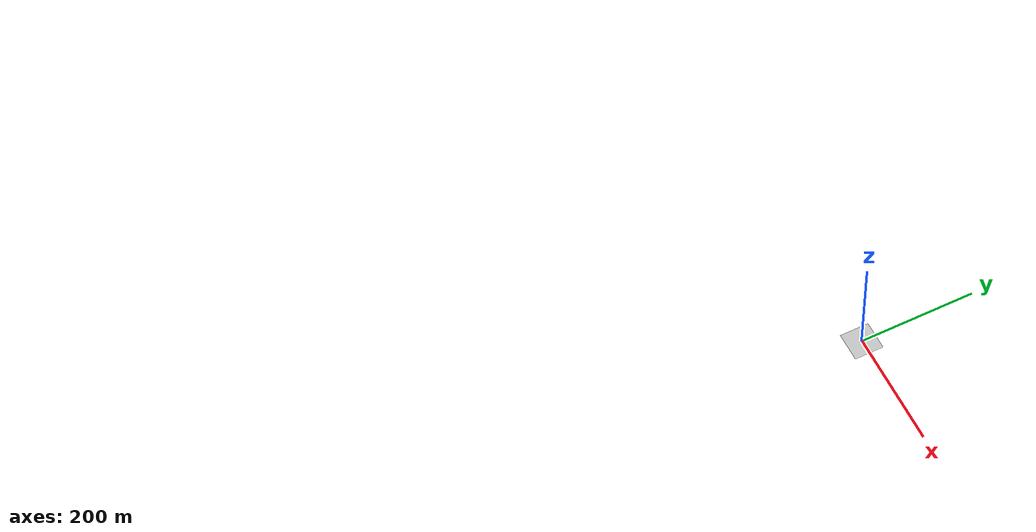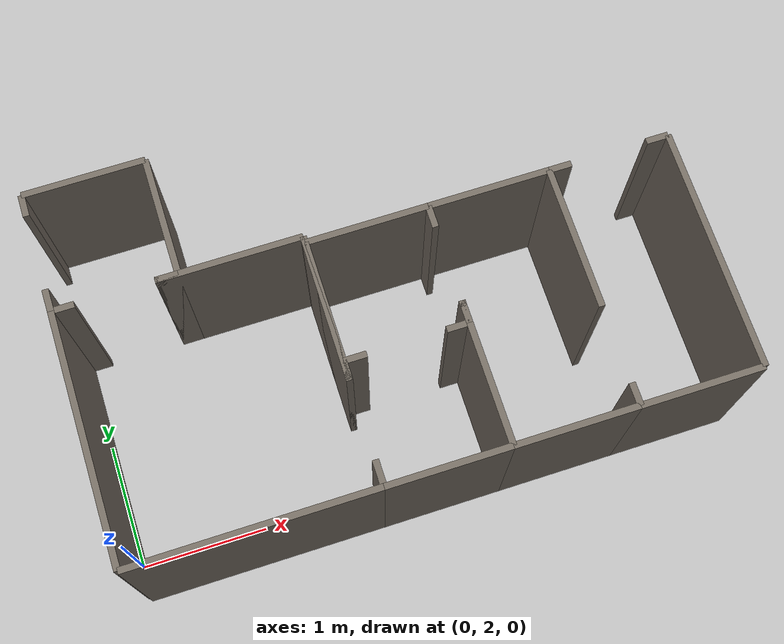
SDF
<sdf version="1.10">
 <world name="fase4">
  <plugin filename="gz-sim-physics-system" name="gz::sim::systems::Physics"/>
  <plugin filename="gz-sim-user-commands-system" name="gz::sim::systems::UserCommands"/>
  <plugin filename="gz-sim-scene-broadcaster-system" name="gz::sim::systems::SceneBroadcaster"/>
  <plugin filename="gz-sim-sensors-system" name="gz::sim::systems::Sensors">
   <render_engine>ogre2</render_engine>
  </plugin>
  <plugin filename="gz-sim-imu-system" name="gz::sim::systems::Imu"/>
  <plugin filename="gz-sim-air-speed-system" name="gz::sim::systems::AirSpeed"/>
  <plugin name="gz::sim::systems::AirPressure" filename="gz-sim-air-pressure-system"/>
  <light type="directional" name="sun">
   <pose>0 0 20 0 0 0</pose>
   <ambient>0.8 0.8 0.8 1</ambient>
   <diffuse>1.0 1.0 1.0 1</diffuse>
   <specular>0.2 0.2 0.2 1</specular>
   <attenuation>
    <range>1000</range>
    <constant>0.9</constant>
    <linear>0.01</linear>
    <quadratic>0.001</quadratic>
   </attenuation>
   <direction>-0.5 0.1 -0.9</direction>
  </light>
  <scene><shadows>false</shadows></scene>
  <model name="ground_plane">
   <static>true</static>
   <link name="link">
    <collision name="collision">
     <geometry><plane><normal>0 0 1</normal><size>250 250</size></plane></geometry>
     <surface><friction><ode><mu>1</mu><mu2>1</mu2></ode></friction></surface>
    </collision>
    <visual name="grass">
     <cast_shadows>false</cast_shadows>
     <geometry><mesh><uri>file://grass_plane/meshes/grass_plane.dae</uri></mesh></geometry>
    </visual>
   </link>
  </model>
  <model name="the_void">
   <static>1</static>
   <link name="link">
    <pose>0 0 0.1 0 -0 0</pose>
    <visual name="the_void">
     <pose>0 0 2 0 -0 0</pose>
     <geometry><sphere><radius>0.25</radius></sphere></geometry>
     <material>
      <script><uri>file://media/materials/scripts/Gazebo.material</uri><name>Gazebo/Black</name></script>
     </material>
    </visual>
   </link>
   <pose>-1000 -1000 0 0 0 0</pose>
  </model>
  <include><uri>model://labirinto_fase4</uri></include>
 </world>
</sdf>

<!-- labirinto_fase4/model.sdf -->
<sdf version="1.9">
  <model name="labirinto_fase4">
    <static>true</static>
    <link name="parede_000">
      <pose>0.4750 4.6500 0.7500 0 0 0.000000</pose>
        <collision name="collision">
          <geometry><box><size>0.9500 0.0500 1.5000</size></box></geometry>
        </collision>
        <visual name="visual">
          <geometry><box><size>0.9500 0.0500 1.5000</size></box></geometry>
          <material>
            <ambient>0.35 0.32 0.28 1</ambient>
            <diffuse>0.45 0.42 0.38 1</diffuse>
          </material>
        </visual>
    </link>
    <link name="parede_001">
      <pose>0.0875 3.7000 0.7500 0 0 0.000000</pose>
        <collision name="collision">
          <geometry><box><size>0.1750 0.0500 1.5000</size></box></geometry>
        </collision>
        <visual name="visual">
          <geometry><box><size>0.1750 0.0500 1.5000</size></box></geometry>
          <material>
            <ambient>0.35 0.32 0.28 1</ambient>
            <diffuse>0.45 0.42 0.38 1</diffuse>
          </material>
        </visual>
    </link>
    <link name="parede_002">
      <pose>0.8625 3.7000 0.7500 0 0 0.000000</pose>
        <collision name="collision">
          <geometry><box><size>0.1750 0.0500 1.5000</size></box></geometry>
        </collision>
        <visual name="visual">
          <geometry><box><size>0.1750 0.0500 1.5000</size></box></geometry>
          <material>
            <ambient>0.35 0.32 0.28 1</ambient>
            <diffuse>0.45 0.42 0.38 1</diffuse>
          </material>
        </visual>
    </link>
    <link name="parede_003">
      <pose>0.0000 3.7875 0.7500 0 0 1.570796</pose>
        <collision name="collision">
          <geometry><box><size>0.1750 0.0500 1.5000</size></box></geometry>
        </collision>
        <visual name="visual">
          <geometry><box><size>0.1750 0.0500 1.5000</size></box></geometry>
          <material>
            <ambient>0.35 0.32 0.28 1</ambient>
            <diffuse>0.45 0.42 0.38 1</diffuse>
          </material>
        </visual>
    </link>
    <link name="parede_004">
      <pose>0.0000 4.5625 0.7500 0 0 1.570796</pose>
        <collision name="collision">
          <geometry><box><size>0.1750 0.0500 1.5000</size></box></geometry>
        </collision>
        <visual name="visual">
          <geometry><box><size>0.1750 0.0500 1.5000</size></box></geometry>
          <material>
            <ambient>0.35 0.32 0.28 1</ambient>
            <diffuse>0.45 0.42 0.38 1</diffuse>
          </material>
        </visual>
    </link>
    <link name="parede_005">
      <pose>0.9500 4.1750 0.7500 0 0 1.570796</pose>
        <collision name="collision">
          <geometry><box><size>0.9500 0.0500 1.5000</size></box></geometry>
        </collision>
        <visual name="visual">
          <geometry><box><size>0.9500 0.0500 1.5000</size></box></geometry>
          <material>
            <ambient>0.35 0.32 0.28 1</ambient>
            <diffuse>0.45 0.42 0.38 1</diffuse>
          </material>
        </visual>
    </link>
    <link name="parede_006">
      <pose>1.3375 3.7000 0.7500 0 0 0.000000</pose>
        <collision name="collision">
          <geometry><box><size>1.1250 0.0500 1.5000</size></box></geometry>
        </collision>
        <visual name="visual">
          <geometry><box><size>1.1250 0.0500 1.5000</size></box></geometry>
          <material>
            <ambient>0.35 0.32 0.28 1</ambient>
            <diffuse>0.45 0.42 0.38 1</diffuse>
          </material>
        </visual>
    </link>
    <link name="parede_007">
      <pose>0.9500 1.7500 0.7500 0 0 0.000000</pose>
        <collision name="collision">
          <geometry><box><size>1.9000 0.0500 1.5000</size></box></geometry>
        </collision>
        <visual name="visual">
          <geometry><box><size>1.9000 0.0500 1.5000</size></box></geometry>
          <material>
            <ambient>0.35 0.32 0.28 1</ambient>
            <diffuse>0.45 0.42 0.38 1</diffuse>
          </material>
        </visual>
    </link>
    <link name="parede_008">
      <pose>0.0000 2.7250 0.7500 0 0 1.570796</pose>
        <collision name="collision">
          <geometry><box><size>1.9500 0.0500 1.5000</size></box></geometry>
        </collision>
        <visual name="visual">
          <geometry><box><size>1.9500 0.0500 1.5000</size></box></geometry>
          <material>
            <ambient>0.35 0.32 0.28 1</ambient>
            <diffuse>0.45 0.42 0.38 1</diffuse>
          </material>
        </visual>
    </link>
    <link name="parede_009">
      <pose>1.9000 1.8500 0.7500 0 0 1.570796</pose>
        <collision name="collision">
          <geometry><box><size>0.2000 0.0500 1.5000</size></box></geometry>
        </collision>
        <visual name="visual">
          <geometry><box><size>0.2000 0.0500 1.5000</size></box></geometry>
          <material>
            <ambient>0.35 0.32 0.28 1</ambient>
            <diffuse>0.45 0.42 0.38 1</diffuse>
          </material>
        </visual>
    </link>
    <link name="parede_010">
      <pose>1.9000 3.1250 0.7500 0 0 1.570796</pose>
        <collision name="collision">
          <geometry><box><size>1.1500 0.0500 1.5000</size></box></geometry>
        </collision>
        <visual name="visual">
          <geometry><box><size>1.1500 0.0500 1.5000</size></box></geometry>
          <material>
            <ambient>0.35 0.32 0.28 1</ambient>
            <diffuse>0.45 0.42 0.38 1</diffuse>
          </material>
        </visual>
    </link>
    <link name="parede_011">
      <pose>1.9875 2.7000 0.7500 0 0 0.000000</pose>
        <collision name="collision">
          <geometry><box><size>0.1750 0.0500 1.5000</size></box></geometry>
        </collision>
        <visual name="visual">
          <geometry><box><size>0.1750 0.0500 1.5000</size></box></geometry>
          <material>
            <ambient>0.35 0.32 0.28 1</ambient>
            <diffuse>0.45 0.42 0.38 1</diffuse>
          </material>
        </visual>
    </link>
    <link name="parede_012">
      <pose>2.7625 2.7000 0.7500 0 0 0.000000</pose>
        <collision name="collision">
          <geometry><box><size>0.1750 0.0500 1.5000</size></box></geometry>
        </collision>
        <visual name="visual">
          <geometry><box><size>0.1750 0.0500 1.5000</size></box></geometry>
          <material>
            <ambient>0.35 0.32 0.28 1</ambient>
            <diffuse>0.45 0.42 0.38 1</diffuse>
          </material>
        </visual>
    </link>
    <link name="parede_013">
      <pose>2.3750 1.7500 0.7500 0 0 0.000000</pose>
        <collision name="collision">
          <geometry><box><size>0.9500 0.0500 1.5000</size></box></geometry>
        </collision>
        <visual name="visual">
          <geometry><box><size>0.9500 0.0500 1.5000</size></box></geometry>
          <material>
            <ambient>0.35 0.32 0.28 1</ambient>
            <diffuse>0.45 0.42 0.38 1</diffuse>
          </material>
        </visual>
    </link>
    <link name="parede_014">
      <pose>1.9000 2.6250 0.7500 0 0 1.570796</pose>
        <collision name="collision">
          <geometry><box><size>0.1500 0.0500 1.5000</size></box></geometry>
        </collision>
        <visual name="visual">
          <geometry><box><size>0.1500 0.0500 1.5000</size></box></geometry>
          <material>
            <ambient>0.35 0.32 0.28 1</ambient>
            <diffuse>0.45 0.42 0.38 1</diffuse>
          </material>
        </visual>
    </link>
    <link name="parede_015">
      <pose>2.8500 2.2250 0.7500 0 0 1.570796</pose>
        <collision name="collision">
          <geometry><box><size>0.9500 0.0500 1.5000</size></box></geometry>
        </collision>
        <visual name="visual">
          <geometry><box><size>0.9500 0.0500 1.5000</size></box></geometry>
          <material>
            <ambient>0.35 0.32 0.28 1</ambient>
            <diffuse>0.45 0.42 0.38 1</diffuse>
          </material>
        </visual>
    </link>
    <link name="parede_016">
      <pose>2.3750 3.6500 0.7500 0 0 0.000000</pose>
        <collision name="collision">
          <geometry><box><size>0.9500 0.0500 1.5000</size></box></geometry>
        </collision>
        <visual name="visual">
          <geometry><box><size>0.9500 0.0500 1.5000</size></box></geometry>
          <material>
            <ambient>0.35 0.32 0.28 1</ambient>
            <diffuse>0.45 0.42 0.38 1</diffuse>
          </material>
        </visual>
    </link>
    <link name="parede_017">
      <pose>1.9000 3.1750 0.7500 0 0 1.570796</pose>
        <collision name="collision">
          <geometry><box><size>0.9500 0.0500 1.5000</size></box></geometry>
        </collision>
        <visual name="visual">
          <geometry><box><size>0.9500 0.0500 1.5000</size></box></geometry>
          <material>
            <ambient>0.35 0.32 0.28 1</ambient>
            <diffuse>0.45 0.42 0.38 1</diffuse>
          </material>
        </visual>
    </link>
    <link name="parede_018">
      <pose>2.8500 2.7875 0.7500 0 0 1.570796</pose>
        <collision name="collision">
          <geometry><box><size>0.1750 0.0500 1.5000</size></box></geometry>
        </collision>
        <visual name="visual">
          <geometry><box><size>0.1750 0.0500 1.5000</size></box></geometry>
          <material>
            <ambient>0.35 0.32 0.28 1</ambient>
            <diffuse>0.45 0.42 0.38 1</diffuse>
          </material>
        </visual>
    </link>
    <link name="parede_019">
      <pose>2.8500 3.5625 0.7500 0 0 1.570796</pose>
        <collision name="collision">
          <geometry><box><size>0.1750 0.0500 1.5000</size></box></geometry>
        </collision>
        <visual name="visual">
          <geometry><box><size>0.1750 0.0500 1.5000</size></box></geometry>
          <material>
            <ambient>0.35 0.32 0.28 1</ambient>
            <diffuse>0.45 0.42 0.38 1</diffuse>
          </material>
        </visual>
    </link>
    <link name="parede_020">
      <pose>3.3250 3.6500 0.7500 0 0 0.000000</pose>
        <collision name="collision">
          <geometry><box><size>0.9500 0.0500 1.5000</size></box></geometry>
        </collision>
        <visual name="visual">
          <geometry><box><size>0.9500 0.0500 1.5000</size></box></geometry>
          <material>
            <ambient>0.35 0.32 0.28 1</ambient>
            <diffuse>0.45 0.42 0.38 1</diffuse>
          </material>
        </visual>
    </link>
    <link name="parede_021">
      <pose>3.3250 1.7500 0.7500 0 0 0.000000</pose>
        <collision name="collision">
          <geometry><box><size>0.9500 0.0500 1.5000</size></box></geometry>
        </collision>
        <visual name="visual">
          <geometry><box><size>0.9500 0.0500 1.5000</size></box></geometry>
          <material>
            <ambient>0.35 0.32 0.28 1</ambient>
            <diffuse>0.45 0.42 0.38 1</diffuse>
          </material>
        </visual>
    </link>
    <link name="parede_022">
      <pose>2.8500 2.3125 0.7500 0 0 1.570796</pose>
        <collision name="collision">
          <geometry><box><size>1.1250 0.0500 1.5000</size></box></geometry>
        </collision>
        <visual name="visual">
          <geometry><box><size>1.1250 0.0500 1.5000</size></box></geometry>
          <material>
            <ambient>0.35 0.32 0.28 1</ambient>
            <diffuse>0.45 0.42 0.38 1</diffuse>
          </material>
        </visual>
    </link>
    <link name="parede_023">
      <pose>3.8000 1.8375 0.7500 0 0 1.570796</pose>
        <collision name="collision">
          <geometry><box><size>0.1750 0.0500 1.5000</size></box></geometry>
        </collision>
        <visual name="visual">
          <geometry><box><size>0.1750 0.0500 1.5000</size></box></geometry>
          <material>
            <ambient>0.35 0.32 0.28 1</ambient>
            <diffuse>0.45 0.42 0.38 1</diffuse>
          </material>
        </visual>
    </link>
    <link name="parede_024">
      <pose>3.8000 3.0875 0.7500 0 0 1.570796</pose>
        <collision name="collision">
          <geometry><box><size>1.1250 0.0500 1.5000</size></box></geometry>
        </collision>
        <visual name="visual">
          <geometry><box><size>1.1250 0.0500 1.5000</size></box></geometry>
          <material>
            <ambient>0.35 0.32 0.28 1</ambient>
            <diffuse>0.45 0.42 0.38 1</diffuse>
          </material>
        </visual>
    </link>
    <link name="parede_025">
      <pose>3.8875 3.6500 0.7500 0 0 0.000000</pose>
        <collision name="collision">
          <geometry><box><size>0.1750 0.0500 1.5000</size></box></geometry>
        </collision>
        <visual name="visual">
          <geometry><box><size>0.1750 0.0500 1.5000</size></box></geometry>
          <material>
            <ambient>0.35 0.32 0.28 1</ambient>
            <diffuse>0.45 0.42 0.38 1</diffuse>
          </material>
        </visual>
    </link>
    <link name="parede_026">
      <pose>4.6625 3.6500 0.7500 0 0 0.000000</pose>
        <collision name="collision">
          <geometry><box><size>0.1750 0.0500 1.5000</size></box></geometry>
        </collision>
        <visual name="visual">
          <geometry><box><size>0.1750 0.0500 1.5000</size></box></geometry>
          <material>
            <ambient>0.35 0.32 0.28 1</ambient>
            <diffuse>0.45 0.42 0.38 1</diffuse>
          </material>
        </visual>
    </link>
    <link name="parede_027">
      <pose>4.2750 1.7500 0.7500 0 0 0.000000</pose>
        <collision name="collision">
          <geometry><box><size>0.9500 0.0500 1.5000</size></box></geometry>
        </collision>
        <visual name="visual">
          <geometry><box><size>0.9500 0.0500 1.5000</size></box></geometry>
          <material>
            <ambient>0.35 0.32 0.28 1</ambient>
            <diffuse>0.45 0.42 0.38 1</diffuse>
          </material>
        </visual>
    </link>
    <link name="parede_028">
      <pose>4.7500 2.7000 0.7500 0 0 1.570796</pose>
        <collision name="collision">
          <geometry><box><size>1.9000 0.0500 1.5000</size></box></geometry>
        </collision>
        <visual name="visual">
          <geometry><box><size>1.9000 0.0500 1.5000</size></box></geometry>
          <material>
            <ambient>0.35 0.32 0.28 1</ambient>
            <diffuse>0.45 0.42 0.38 1</diffuse>
          </material>
        </visual>
    </link>
  </model>
</sdf>
